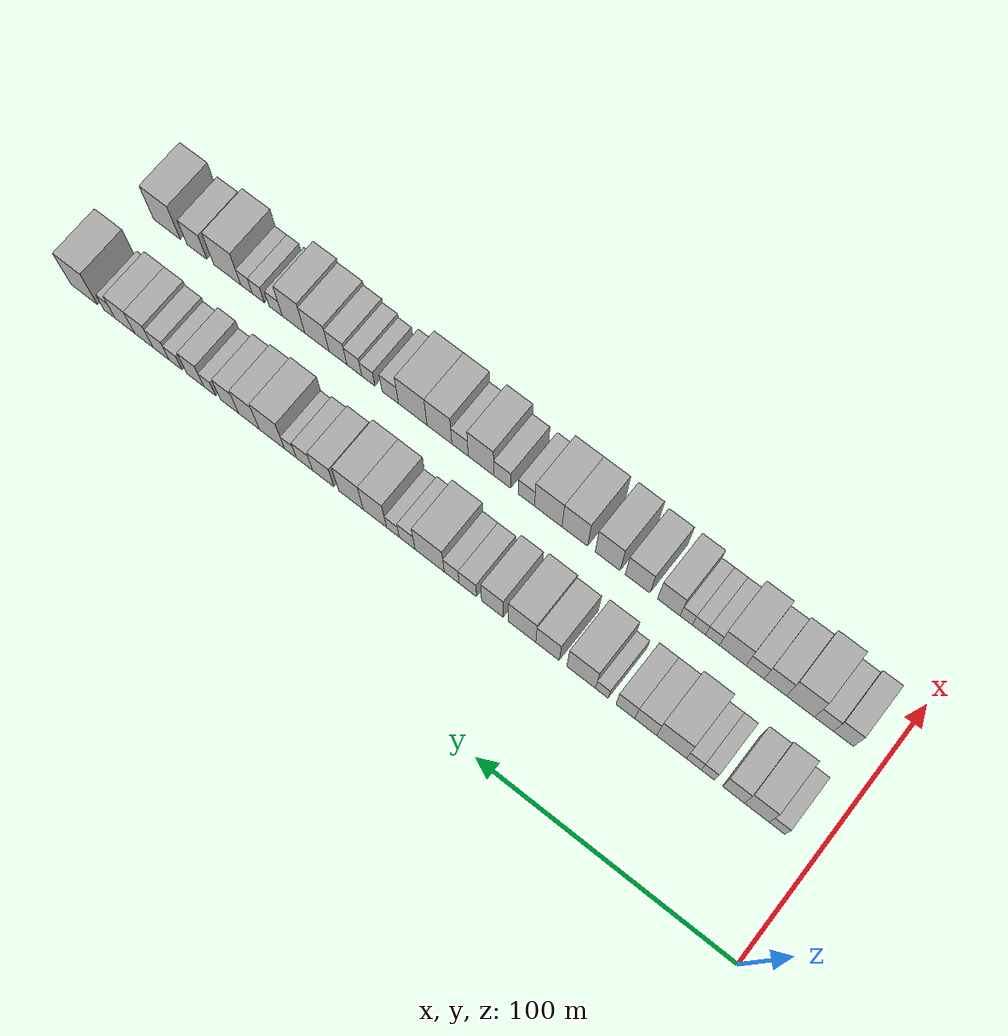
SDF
<sdf version="1.6">
 <world name="default">
  <model name="building_33">
   <static>1</static>
   <pose>50.0000 14.3444 0 0.000000 0.000000 0.000000</pose>
   <link name="link">
    <pose>0 0 6.00 0 0 0</pose>
    <collision name="collision"><geometry><box><size>20.0000 5.9111 12.0000</size></box></geometry></collision>
    <visual name="visual">
     <cast_shadows>0</cast_shadows>
     <geometry><box><size>20.0000 5.9111 12.0000</size></box></geometry>
     <material>
      <script>
       <uri>model://HANNAS_wall/materials/scripts</uri>
       <uri>model://HANNAS_wall/materials/textures</uri>
       <name>vrc/HANNAS_wall</name>
      </script>
     </material>
    </visual>
   </link>
  </model>
  <model name="building_34">
   <static>1</static>
   <pose>50.0000 21.9652 0 0.000000 0.000000 0.000000</pose>
   <link name="link">
    <pose>0 0 10.50 0 0 0</pose>
    <collision name="collision"><geometry><box><size>20.0000 9.3304 21.0000</size></box></geometry></collision>
    <visual name="visual">
     <cast_shadows>0</cast_shadows>
     <geometry><box><size>20.0000 9.3304 21.0000</size></box></geometry>
     <material>
      <script>
       <uri>model://HANNAS_wall/materials/scripts</uri>
       <uri>model://HANNAS_wall/materials/textures</uri>
       <name>vrc/HANNAS_wall</name>
      </script>
     </material>
    </visual>
   </link>
  </model>
  <model name="building_35">
   <static>1</static>
   <pose>50.0000 30.7936 0 0.000000 0.000000 0.000000</pose>
   <link name="link">
    <pose>0 0 9.00 0 0 0</pose>
    <collision name="collision"><geometry><box><size>20.0000 8.3263 18.0000</size></box></geometry></collision>
    <visual name="visual">
     <cast_shadows>0</cast_shadows>
     <geometry><box><size>20.0000 8.3263 18.0000</size></box></geometry>
     <material>
      <script>
       <uri>model://HANNAS_wall/materials/scripts</uri>
       <uri>model://HANNAS_wall/materials/textures</uri>
       <name>vrc/HANNAS_wall</name>
      </script>
     </material>
    </visual>
   </link>
  </model>
  <model name="building_36">
   <static>1</static>
   <pose>50.0000 40.5594 0 0.000000 0.000000 0.000000</pose>
   <link name="link">
    <pose>0 0 6.00 0 0 0</pose>
    <collision name="collision"><geometry><box><size>20.0000 5.2052 12.0000</size></box></geometry></collision>
    <visual name="visual">
     <cast_shadows>0</cast_shadows>
     <geometry><box><size>20.0000 5.2052 12.0000</size></box></geometry>
     <material>
      <script>
       <uri>model://HANNAS_wall/materials/scripts</uri>
       <uri>model://HANNAS_wall/materials/textures</uri>
       <name>vrc/HANNAS_wall</name>
      </script>
     </material>
    </visual>
   </link>
  </model>
  <model name="building_37">
   <static>1</static>
   <pose>50.0000 45.9524 0 0.000000 0.000000 0.000000</pose>
   <link name="link">
    <pose>0 0 6.00 0 0 0</pose>
    <collision name="collision"><geometry><box><size>20.0000 5.5808 12.0000</size></box></geometry></collision>
    <visual name="visual">
     <cast_shadows>0</cast_shadows>
     <geometry><box><size>20.0000 5.5808 12.0000</size></box></geometry>
     <material>
      <script>
       <uri>model://HANNAS_wall/materials/scripts</uri>
       <uri>model://HANNAS_wall/materials/textures</uri>
       <name>vrc/HANNAS_wall</name>
      </script>
     </material>
    </visual>
   </link>
  </model>
  <model name="building_38">
   <static>1</static>
   <pose>50.0000 54.4894 0 0.000000 0.000000 0.000000</pose>
   <link name="link">
    <pose>0 0 12.00 0 0 0</pose>
    <collision name="collision"><geometry><box><size>20.0000 11.4933 24.0000</size></box></geometry></collision>
    <visual name="visual">
     <cast_shadows>0</cast_shadows>
     <geometry><box><size>20.0000 11.4933 24.0000</size></box></geometry>
     <material>
      <script>
       <uri>model://HANNAS_wall/materials/scripts</uri>
       <uri>model://HANNAS_wall/materials/textures</uri>
       <name>vrc/HANNAS_wall</name>
      </script>
     </material>
    </visual>
   </link>
  </model>
  <model name="building_39">
   <static>1</static>
   <pose>50.0000 64.4755 0 0.000000 0.000000 0.000000</pose>
   <link name="link">
    <pose>0 0 9.00 0 0 0</pose>
    <collision name="collision"><geometry><box><size>20.0000 8.4789 18.0000</size></box></geometry></collision>
    <visual name="visual">
     <cast_shadows>0</cast_shadows>
     <geometry><box><size>20.0000 8.4789 18.0000</size></box></geometry>
     <material>
      <script>
       <uri>model://HANNAS_wall/materials/scripts</uri>
       <uri>model://HANNAS_wall/materials/textures</uri>
       <name>vrc/HANNAS_wall</name>
      </script>
     </material>
    </visual>
   </link>
  </model>
  <model name="building_40">
   <static>1</static>
   <pose>50.0000 72.4125 0 0.000000 0.000000 0.000000</pose>
   <link name="link">
    <pose>0 0 9.00 0 0 0</pose>
    <collision name="collision"><geometry><box><size>20.0000 7.3950 18.0000</size></box></geometry></collision>
    <visual name="visual">
     <cast_shadows>0</cast_shadows>
     <geometry><box><size>20.0000 7.3950 18.0000</size></box></geometry>
     <material>
      <script>
       <uri>model://HANNAS_wall/materials/scripts</uri>
       <uri>model://HANNAS_wall/materials/textures</uri>
       <name>vrc/HANNAS_wall</name>
      </script>
     </material>
    </visual>
   </link>
  </model>
  <model name="building_41">
   <static>1</static>
   <pose>50.0000 81.6175 0 0.000000 0.000000 0.000000</pose>
   <link name="link">
    <pose>0 0 6.00 0 0 0</pose>
    <collision name="collision"><geometry><box><size>20.0000 5.0149 12.0000</size></box></geometry></collision>
    <visual name="visual">
     <cast_shadows>0</cast_shadows>
     <geometry><box><size>20.0000 5.0149 12.0000</size></box></geometry>
     <material>
      <script>
       <uri>model://HANNAS_wall/materials/scripts</uri>
       <uri>model://HANNAS_wall/materials/textures</uri>
       <name>vrc/HANNAS_wall</name>
      </script>
     </material>
    </visual>
   </link>
  </model>
  <model name="building_42">
   <static>1</static>
   <pose>50.0000 89.7764 0 0.000000 0.000000 0.000000</pose>
   <link name="link">
    <pose>0 0 12.00 0 0 0</pose>
    <collision name="collision"><geometry><box><size>20.0000 11.3030 24.0000</size></box></geometry></collision>
    <visual name="visual">
     <cast_shadows>0</cast_shadows>
     <geometry><box><size>20.0000 11.3030 24.0000</size></box></geometry>
     <material>
      <script>
       <uri>model://HANNAS_wall/materials/scripts</uri>
       <uri>model://HANNAS_wall/materials/textures</uri>
       <name>vrc/HANNAS_wall</name>
      </script>
     </material>
    </visual>
   </link>
  </model>
  <model name="building_43">
   <static>1</static>
   <pose>50.0000 103.0872 0 0.000000 0.000000 0.000000</pose>
   <link name="link">
    <pose>0 0 10.50 0 0 0</pose>
    <collision name="collision"><geometry><box><size>20.0000 9.3187 21.0000</size></box></geometry></collision>
    <visual name="visual">
     <cast_shadows>0</cast_shadows>
     <geometry><box><size>20.0000 9.3187 21.0000</size></box></geometry>
     <material>
      <script>
       <uri>model://HANNAS_wall/materials/scripts</uri>
       <uri>model://HANNAS_wall/materials/textures</uri>
       <name>vrc/HANNAS_wall</name>
      </script>
     </material>
    </visual>
   </link>
  </model>
  <model name="building_44">
   <static>1</static>
   <pose>50.0000 113.2715 0 0.000000 0.000000 0.000000</pose>
   <link name="link">
    <pose>0 0 12.00 0 0 0</pose>
    <collision name="collision"><geometry><box><size>20.0000 11.0499 24.0000</size></box></geometry></collision>
    <visual name="visual">
     <cast_shadows>0</cast_shadows>
     <geometry><box><size>20.0000 11.0499 24.0000</size></box></geometry>
     <material>
      <script>
       <uri>model://HANNAS_wall/materials/scripts</uri>
       <uri>model://HANNAS_wall/materials/textures</uri>
       <name>vrc/HANNAS_wall</name>
      </script>
     </material>
    </visual>
   </link>
  </model>
  <model name="building_45">
   <static>1</static>
   <pose>50.0000 125.1770 0 0.000000 0.000000 0.000000</pose>
   <link name="link">
    <pose>0 0 10.50 0 0 0</pose>
    <collision name="collision"><geometry><box><size>20.0000 8.7611 21.0000</size></box></geometry></collision>
    <visual name="visual">
     <cast_shadows>0</cast_shadows>
     <geometry><box><size>20.0000 8.7611 21.0000</size></box></geometry>
     <material>
      <script>
       <uri>model://HANNAS_wall/materials/scripts</uri>
       <uri>model://HANNAS_wall/materials/textures</uri>
       <name>vrc/HANNAS_wall</name>
      </script>
     </material>
    </visual>
   </link>
  </model>
  <model name="building_46">
   <static>1</static>
   <pose>50.0000 135.1034 0 0.000000 0.000000 0.000000</pose>
   <link name="link">
    <pose>0 0 7.50 0 0 0</pose>
    <collision name="collision"><geometry><box><size>20.0000 7.0916 15.0000</size></box></geometry></collision>
    <visual name="visual">
     <cast_shadows>0</cast_shadows>
     <geometry><box><size>20.0000 7.0916 15.0000</size></box></geometry>
     <material>
      <script>
       <uri>model://HANNAS_wall/materials/scripts</uri>
       <uri>model://HANNAS_wall/materials/textures</uri>
       <name>vrc/HANNAS_wall</name>
      </script>
     </material>
    </visual>
   </link>
  </model>
  <model name="building_47">
   <static>1</static>
   <pose>50.0000 141.6716 0 0.000000 0.000000 0.000000</pose>
   <link name="link">
    <pose>0 0 7.50 0 0 0</pose>
    <collision name="collision"><geometry><box><size>20.0000 6.0449 15.0000</size></box></geometry></collision>
    <visual name="visual">
     <cast_shadows>0</cast_shadows>
     <geometry><box><size>20.0000 6.0449 15.0000</size></box></geometry>
     <material>
      <script>
       <uri>model://HANNAS_wall/materials/scripts</uri>
       <uri>model://HANNAS_wall/materials/textures</uri>
       <name>vrc/HANNAS_wall</name>
      </script>
     </material>
    </visual>
   </link>
  </model>
  <model name="building_48">
   <static>1</static>
   <pose>50.0000 150.6793 0 0.000000 0.000000 0.000000</pose>
   <link name="link">
    <pose>0 0 12.00 0 0 0</pose>
    <collision name="collision"><geometry><box><size>20.0000 11.9705 24.0000</size></box></geometry></collision>
    <visual name="visual">
     <cast_shadows>0</cast_shadows>
     <geometry><box><size>20.0000 11.9705 24.0000</size></box></geometry>
     <material>
      <script>
       <uri>model://HANNAS_wall/materials/scripts</uri>
       <uri>model://HANNAS_wall/materials/textures</uri>
       <name>vrc/HANNAS_wall</name>
      </script>
     </material>
    </visual>
   </link>
  </model>
  <model name="building_49">
   <static>1</static>
   <pose>50.0000 159.9098 0 0.000000 0.000000 0.000000</pose>
   <link name="link">
    <pose>0 0 7.50 0 0 0</pose>
    <collision name="collision"><geometry><box><size>20.0000 6.4904 15.0000</size></box></geometry></collision>
    <visual name="visual">
     <cast_shadows>0</cast_shadows>
     <geometry><box><size>20.0000 6.4904 15.0000</size></box></geometry>
     <material>
      <script>
       <uri>model://HANNAS_wall/materials/scripts</uri>
       <uri>model://HANNAS_wall/materials/textures</uri>
       <name>vrc/HANNAS_wall</name>
      </script>
     </material>
    </visual>
   </link>
  </model>
  <model name="building_50">
   <static>1</static>
   <pose>50.0000 165.7924 0 0.000000 0.000000 0.000000</pose>
   <link name="link">
    <pose>0 0 6.00 0 0 0</pose>
    <collision name="collision"><geometry><box><size>20.0000 5.2749 12.0000</size></box></geometry></collision>
    <visual name="visual">
     <cast_shadows>0</cast_shadows>
     <geometry><box><size>20.0000 5.2749 12.0000</size></box></geometry>
     <material>
      <script>
       <uri>model://HANNAS_wall/materials/scripts</uri>
       <uri>model://HANNAS_wall/materials/textures</uri>
       <name>vrc/HANNAS_wall</name>
      </script>
     </material>
    </visual>
   </link>
  </model>
  <model name="building_51">
   <static>1</static>
   <pose>50.0000 173.2698 0 0.000000 0.000000 0.000000</pose>
   <link name="link">
    <pose>0 0 12.00 0 0 0</pose>
    <collision name="collision"><geometry><box><size>20.0000 9.6800 24.0000</size></box></geometry></collision>
    <visual name="visual">
     <cast_shadows>0</cast_shadows>
     <geometry><box><size>20.0000 9.6800 24.0000</size></box></geometry>
     <material>
      <script>
       <uri>model://HANNAS_wall/materials/scripts</uri>
       <uri>model://HANNAS_wall/materials/textures</uri>
       <name>vrc/HANNAS_wall</name>
      </script>
     </material>
    </visual>
   </link>
  </model>
  <model name="building_52">
   <static>1</static>
   <pose>50.0000 183.2570 0 0.000000 0.000000 0.000000</pose>
   <link name="link">
    <pose>0 0 12.00 0 0 0</pose>
    <collision name="collision"><geometry><box><size>20.0000 10.2944 24.0000</size></box></geometry></collision>
    <visual name="visual">
     <cast_shadows>0</cast_shadows>
     <geometry><box><size>20.0000 10.2944 24.0000</size></box></geometry>
     <material>
      <script>
       <uri>model://HANNAS_wall/materials/scripts</uri>
       <uri>model://HANNAS_wall/materials/textures</uri>
       <name>vrc/HANNAS_wall</name>
      </script>
     </material>
    </visual>
   </link>
  </model>
  <model name="building_53">
   <static>1</static>
   <pose>50.0000 194.8930 0 0.000000 0.000000 0.000000</pose>
   <link name="link">
    <pose>0 0 9.00 0 0 0</pose>
    <collision name="collision"><geometry><box><size>20.0000 8.9776 18.0000</size></box></geometry></collision>
    <visual name="visual">
     <cast_shadows>0</cast_shadows>
     <geometry><box><size>20.0000 8.9776 18.0000</size></box></geometry>
     <material>
      <script>
       <uri>model://HANNAS_wall/materials/scripts</uri>
       <uri>model://HANNAS_wall/materials/textures</uri>
       <name>vrc/HANNAS_wall</name>
      </script>
     </material>
    </visual>
   </link>
  </model>
  <model name="building_54">
   <static>1</static>
   <pose>50.0000 202.7825 0 0.000000 0.000000 0.000000</pose>
   <link name="link">
    <pose>0 0 7.50 0 0 0</pose>
    <collision name="collision"><geometry><box><size>20.0000 6.8014 15.0000</size></box></geometry></collision>
    <visual name="visual">
     <cast_shadows>0</cast_shadows>
     <geometry><box><size>20.0000 6.8014 15.0000</size></box></geometry>
     <material>
      <script>
       <uri>model://HANNAS_wall/materials/scripts</uri>
       <uri>model://HANNAS_wall/materials/textures</uri>
       <name>vrc/HANNAS_wall</name>
      </script>
     </material>
    </visual>
   </link>
  </model>
  <model name="building_55">
   <static>1</static>
   <pose>50.0000 208.6903 0 0.000000 0.000000 0.000000</pose>
   <link name="link">
    <pose>0 0 6.00 0 0 0</pose>
    <collision name="collision"><geometry><box><size>20.0000 5.0142 12.0000</size></box></geometry></collision>
    <visual name="visual">
     <cast_shadows>0</cast_shadows>
     <geometry><box><size>20.0000 5.0142 12.0000</size></box></geometry>
     <material>
      <script>
       <uri>model://HANNAS_wall/materials/scripts</uri>
       <uri>model://HANNAS_wall/materials/textures</uri>
       <name>vrc/HANNAS_wall</name>
      </script>
     </material>
    </visual>
   </link>
  </model>
  <model name="building_56">
   <static>1</static>
   <pose>50.0000 216.5766 0 0.000000 0.000000 0.000000</pose>
   <link name="link">
    <pose>0 0 12.00 0 0 0</pose>
    <collision name="collision"><geometry><box><size>20.0000 10.7585 24.0000</size></box></geometry></collision>
    <visual name="visual">
     <cast_shadows>0</cast_shadows>
     <geometry><box><size>20.0000 10.7585 24.0000</size></box></geometry>
     <material>
      <script>
       <uri>model://HANNAS_wall/materials/scripts</uri>
       <uri>model://HANNAS_wall/materials/textures</uri>
       <name>vrc/HANNAS_wall</name>
      </script>
     </material>
    </visual>
   </link>
  </model>
  <model name="building_57">
   <static>1</static>
   <pose>50.0000 226.4314 0 0.000000 0.000000 0.000000</pose>
   <link name="link">
    <pose>0 0 10.50 0 0 0</pose>
    <collision name="collision"><geometry><box><size>20.0000 8.9510 21.0000</size></box></geometry></collision>
    <visual name="visual">
     <cast_shadows>0</cast_shadows>
     <geometry><box><size>20.0000 8.9510 21.0000</size></box></geometry>
     <material>
      <script>
       <uri>model://HANNAS_wall/materials/scripts</uri>
       <uri>model://HANNAS_wall/materials/textures</uri>
       <name>vrc/HANNAS_wall</name>
      </script>
     </material>
    </visual>
   </link>
  </model>
  <model name="building_58">
   <static>1</static>
   <pose>50.0000 234.8425 0 0.000000 0.000000 0.000000</pose>
   <link name="link">
    <pose>0 0 9.00 0 0 0</pose>
    <collision name="collision"><geometry><box><size>20.0000 7.8712 18.0000</size></box></geometry></collision>
    <visual name="visual">
     <cast_shadows>0</cast_shadows>
     <geometry><box><size>20.0000 7.8712 18.0000</size></box></geometry>
     <material>
      <script>
       <uri>model://HANNAS_wall/materials/scripts</uri>
       <uri>model://HANNAS_wall/materials/textures</uri>
       <name>vrc/HANNAS_wall</name>
      </script>
     </material>
    </visual>
   </link>
  </model>
  <model name="building_59">
   <static>1</static>
   <pose>50.0000 243.3342 0 0.000000 0.000000 0.000000</pose>
   <link name="link">
    <pose>0 0 6.00 0 0 0</pose>
    <collision name="collision"><geometry><box><size>20.0000 5.1123 12.0000</size></box></geometry></collision>
    <visual name="visual">
     <cast_shadows>0</cast_shadows>
     <geometry><box><size>20.0000 5.1123 12.0000</size></box></geometry>
     <material>
      <script>
       <uri>model://HANNAS_wall/materials/scripts</uri>
       <uri>model://HANNAS_wall/materials/textures</uri>
       <name>vrc/HANNAS_wall</name>
      </script>
     </material>
    </visual>
   </link>
  </model>
  <model name="building_60">
   <static>1</static>
   <pose>50.0000 249.6590 0 0.000000 0.000000 0.000000</pose>
   <link name="link">
    <pose>0 0 9.00 0 0 0</pose>
    <collision name="collision"><geometry><box><size>20.0000 7.5372 18.0000</size></box></geometry></collision>
    <visual name="visual">
     <cast_shadows>0</cast_shadows>
     <geometry><box><size>20.0000 7.5372 18.0000</size></box></geometry>
     <material>
      <script>
       <uri>model://HANNAS_wall/materials/scripts</uri>
       <uri>model://HANNAS_wall/materials/textures</uri>
       <name>vrc/HANNAS_wall</name>
      </script>
     </material>
    </visual>
   </link>
  </model>
  <model name="building_61">
   <static>1</static>
   <pose>50.0000 258.2725 0 0.000000 0.000000 0.000000</pose>
   <link name="link">
    <pose>0 0 6.00 0 0 0</pose>
    <collision name="collision"><geometry><box><size>20.0000 5.6899 12.0000</size></box></geometry></collision>
    <visual name="visual">
     <cast_shadows>0</cast_shadows>
     <geometry><box><size>20.0000 5.6899 12.0000</size></box></geometry>
     <material>
      <script>
       <uri>model://HANNAS_wall/materials/scripts</uri>
       <uri>model://HANNAS_wall/materials/textures</uri>
       <name>vrc/HANNAS_wall</name>
      </script>
     </material>
    </visual>
   </link>
  </model>
  <model name="building_62">
   <static>1</static>
   <pose>50.0000 264.6710 0 0.000000 0.000000 0.000000</pose>
   <link name="link">
    <pose>0 0 7.50 0 0 0</pose>
    <collision name="collision"><geometry><box><size>20.0000 7.1070 15.0000</size></box></geometry></collision>
    <visual name="visual">
     <cast_shadows>0</cast_shadows>
     <geometry><box><size>20.0000 7.1070 15.0000</size></box></geometry>
     <material>
      <script>
       <uri>model://HANNAS_wall/materials/scripts</uri>
       <uri>model://HANNAS_wall/materials/textures</uri>
       <name>vrc/HANNAS_wall</name>
      </script>
     </material>
    </visual>
   </link>
  </model>
  <model name="building_63">
   <static>1</static>
   <pose>50.0000 272.2900 0 0.000000 0.000000 0.000000</pose>
   <link name="link">
    <pose>0 0 9.00 0 0 0</pose>
    <collision name="collision"><geometry><box><size>20.0000 8.1312 18.0000</size></box></geometry></collision>
    <visual name="visual">
     <cast_shadows>0</cast_shadows>
     <geometry><box><size>20.0000 8.1312 18.0000</size></box></geometry>
     <material>
      <script>
       <uri>model://HANNAS_wall/materials/scripts</uri>
       <uri>model://HANNAS_wall/materials/textures</uri>
       <name>vrc/HANNAS_wall</name>
      </script>
     </material>
    </visual>
   </link>
  </model>
  <model name="building_64">
   <static>1</static>
   <pose>50.0000 280.7285 0 0.000000 0.000000 0.000000</pose>
   <link name="link">
    <pose>0 0 9.00 0 0 0</pose>
    <collision name="collision"><geometry><box><size>20.0000 8.7458 18.0000</size></box></geometry></collision>
    <visual name="visual">
     <cast_shadows>0</cast_shadows>
     <geometry><box><size>20.0000 8.7458 18.0000</size></box></geometry>
     <material>
      <script>
       <uri>model://HANNAS_wall/materials/scripts</uri>
       <uri>model://HANNAS_wall/materials/textures</uri>
       <name>vrc/HANNAS_wall</name>
      </script>
     </material>
    </visual>
   </link>
  </model>
  <model name="building_65">
   <static>1</static>
   <pose>50.0000 287.5480 0 0.000000 0.000000 0.000000</pose>
   <link name="link">
    <pose>0 0 6.00 0 0 0</pose>
    <collision name="collision"><geometry><box><size>20.0000 4.8931 12.0000</size></box></geometry></collision>
    <visual name="visual">
     <cast_shadows>0</cast_shadows>
     <geometry><box><size>20.0000 4.8931 12.0000</size></box></geometry>
     <material>
      <script>
       <uri>model://HANNAS_wall/materials/scripts</uri>
       <uri>model://HANNAS_wall/materials/textures</uri>
       <name>vrc/HANNAS_wall</name>
      </script>
     </material>
    </visual>
   </link>
  </model>
  <model name="building_66">
   <static>1</static>
   <pose>50.0000 298.9253 0 0.000000 0.000000 0.000000</pose>
   <link name="link">
    <pose>0 0 12.00 0 0 0</pose>
    <collision name="collision"><geometry><box><size>20.0000 11.8617 24.0000</size></box></geometry></collision>
    <visual name="visual">
     <cast_shadows>0</cast_shadows>
     <geometry><box><size>20.0000 11.8617 24.0000</size></box></geometry>
     <material>
      <script>
       <uri>model://HANNAS_wall/materials/scripts</uri>
       <uri>model://HANNAS_wall/materials/textures</uri>
       <name>vrc/HANNAS_wall</name>
      </script>
     </material>
    </visual>
   </link>
  </model>
  <model name="building_101">
   <static>1</static>
   <pose>85.0000 14.2045 0 0.000000 0.000000 0.000000</pose>
   <link name="link">
    <pose>0 0 9.00 0 0 0</pose>
    <collision name="collision"><geometry><box><size>20.0000 7.5555 18.0000</size></box></geometry></collision>
    <visual name="visual">
     <cast_shadows>0</cast_shadows>
     <geometry><box><size>20.0000 7.5555 18.0000</size></box></geometry>
     <material>
      <script>
       <uri>model://HANNAS_wall/materials/scripts</uri>
       <uri>model://HANNAS_wall/materials/textures</uri>
       <name>vrc/HANNAS_wall</name>
      </script>
     </material>
    </visual>
   </link>
  </model>
  <model name="building_102">
   <static>1</static>
   <pose>85.0000 21.5557 0 0.000000 0.000000 0.000000</pose>
   <link name="link">
    <pose>0 0 7.50 0 0 0</pose>
    <collision name="collision"><geometry><box><size>20.0000 7.1469 15.0000</size></box></geometry></collision>
    <visual name="visual">
     <cast_shadows>0</cast_shadows>
     <geometry><box><size>20.0000 7.1469 15.0000</size></box></geometry>
     <material>
      <script>
       <uri>model://HANNAS_wall/materials/scripts</uri>
       <uri>model://HANNAS_wall/materials/textures</uri>
       <name>vrc/HANNAS_wall</name>
      </script>
     </material>
    </visual>
   </link>
  </model>
  <model name="building_103">
   <static>1</static>
   <pose>85.0000 30.5075 0 0.000000 0.000000 0.000000</pose>
   <link name="link">
    <pose>0 0 12.00 0 0 0</pose>
    <collision name="collision"><geometry><box><size>20.0000 10.7569 24.0000</size></box></geometry></collision>
    <visual name="visual">
     <cast_shadows>0</cast_shadows>
     <geometry><box><size>20.0000 10.7569 24.0000</size></box></geometry>
     <material>
      <script>
       <uri>model://HANNAS_wall/materials/scripts</uri>
       <uri>model://HANNAS_wall/materials/textures</uri>
       <name>vrc/HANNAS_wall</name>
      </script>
     </material>
    </visual>
   </link>
  </model>
  <model name="building_104">
   <static>1</static>
   <pose>85.0000 40.2105 0 0.000000 0.000000 0.000000</pose>
   <link name="link">
    <pose>0 0 9.00 0 0 0</pose>
    <collision name="collision"><geometry><box><size>20.0000 8.6491 18.0000</size></box></geometry></collision>
    <visual name="visual">
     <cast_shadows>0</cast_shadows>
     <geometry><box><size>20.0000 8.6491 18.0000</size></box></geometry>
     <material>
      <script>
       <uri>model://HANNAS_wall/materials/scripts</uri>
       <uri>model://HANNAS_wall/materials/textures</uri>
       <name>vrc/HANNAS_wall</name>
      </script>
     </material>
    </visual>
   </link>
  </model>
  <model name="building_105">
   <static>1</static>
   <pose>85.0000 48.0023 0 0.000000 0.000000 0.000000</pose>
   <link name="link">
    <pose>0 0 7.50 0 0 0</pose>
    <collision name="collision"><geometry><box><size>20.0000 6.9347 15.0000</size></box></geometry></collision>
    <visual name="visual">
     <cast_shadows>0</cast_shadows>
     <geometry><box><size>20.0000 6.9347 15.0000</size></box></geometry>
     <material>
      <script>
       <uri>model://HANNAS_wall/materials/scripts</uri>
       <uri>model://HANNAS_wall/materials/textures</uri>
       <name>vrc/HANNAS_wall</name>
      </script>
     </material>
    </visual>
   </link>
  </model>
  <model name="building_106">
   <static>1</static>
   <pose>85.0000 56.6477 0 0.000000 0.000000 0.000000</pose>
   <link name="link">
    <pose>0 0 10.50 0 0 0</pose>
    <collision name="collision"><geometry><box><size>20.0000 10.3561 21.0000</size></box></geometry></collision>
    <visual name="visual">
     <cast_shadows>0</cast_shadows>
     <geometry><box><size>20.0000 10.3561 21.0000</size></box></geometry>
     <material>
      <script>
       <uri>model://HANNAS_wall/materials/scripts</uri>
       <uri>model://HANNAS_wall/materials/textures</uri>
       <name>vrc/HANNAS_wall</name>
      </script>
     </material>
    </visual>
   </link>
  </model>
  <model name="building_107">
   <static>1</static>
   <pose>85.0000 64.5326 0 0.000000 0.000000 0.000000</pose>
   <link name="link">
    <pose>0 0 6.00 0 0 0</pose>
    <collision name="collision"><geometry><box><size>20.0000 5.4136 12.0000</size></box></geometry></collision>
    <visual name="visual">
     <cast_shadows>0</cast_shadows>
     <geometry><box><size>20.0000 5.4136 12.0000</size></box></geometry>
     <material>
      <script>
       <uri>model://HANNAS_wall/materials/scripts</uri>
       <uri>model://HANNAS_wall/materials/textures</uri>
       <name>vrc/HANNAS_wall</name>
      </script>
     </material>
    </visual>
   </link>
  </model>
  <model name="building_108">
   <static>1</static>
   <pose>85.0000 69.8304 0 0.000000 0.000000 0.000000</pose>
   <link name="link">
    <pose>0 0 6.00 0 0 0</pose>
    <collision name="collision"><geometry><box><size>20.0000 5.1820 12.0000</size></box></geometry></collision>
    <visual name="visual">
     <cast_shadows>0</cast_shadows>
     <geometry><box><size>20.0000 5.1820 12.0000</size></box></geometry>
     <material>
      <script>
       <uri>model://HANNAS_wall/materials/scripts</uri>
       <uri>model://HANNAS_wall/materials/textures</uri>
       <name>vrc/HANNAS_wall</name>
      </script>
     </material>
    </visual>
   </link>
  </model>
  <model name="building_109">
   <static>1</static>
   <pose>85.0000 74.8318 0 0.000000 0.000000 0.000000</pose>
   <link name="link">
    <pose>0 0 6.00 0 0 0</pose>
    <collision name="collision"><geometry><box><size>20.0000 4.8208 12.0000</size></box></geometry></collision>
    <visual name="visual">
     <cast_shadows>0</cast_shadows>
     <geometry><box><size>20.0000 4.8208 12.0000</size></box></geometry>
     <material>
      <script>
       <uri>model://HANNAS_wall/materials/scripts</uri>
       <uri>model://HANNAS_wall/materials/textures</uri>
       <name>vrc/HANNAS_wall</name>
      </script>
     </material>
    </visual>
   </link>
  </model>
  <model name="building_110">
   <static>1</static>
   <pose>85.0000 81.7082 0 0.000000 0.000000 0.000000</pose>
   <link name="link">
    <pose>0 0 10.50 0 0 0</pose>
    <collision name="collision"><geometry><box><size>20.0000 8.9322 21.0000</size></box></geometry></collision>
    <visual name="visual">
     <cast_shadows>0</cast_shadows>
     <geometry><box><size>20.0000 8.9322 21.0000</size></box></geometry>
     <material>
      <script>
       <uri>model://HANNAS_wall/materials/scripts</uri>
       <uri>model://HANNAS_wall/materials/textures</uri>
       <name>vrc/HANNAS_wall</name>
      </script>
     </material>
    </visual>
   </link>
  </model>
  <model name="building_111">
   <static>1</static>
   <pose>85.0000 94.0865 0 0.000000 0.000000 0.000000</pose>
   <link name="link">
    <pose>0 0 10.50 0 0 0</pose>
    <collision name="collision"><geometry><box><size>20.0000 9.8243 21.0000</size></box></geometry></collision>
    <visual name="visual">
     <cast_shadows>0</cast_shadows>
     <geometry><box><size>20.0000 9.8243 21.0000</size></box></geometry>
     <material>
      <script>
       <uri>model://HANNAS_wall/materials/scripts</uri>
       <uri>model://HANNAS_wall/materials/textures</uri>
       <name>vrc/HANNAS_wall</name>
      </script>
     </material>
    </visual>
   </link>
  </model>
  <model name="building_112">
   <static>1</static>
   <pose>85.0000 106.0267 0 0.000000 0.000000 0.000000</pose>
   <link name="link">
    <pose>0 0 12.00 0 0 0</pose>
    <collision name="collision"><geometry><box><size>20.0000 10.0562 24.0000</size></box></geometry></collision>
    <visual name="visual">
     <cast_shadows>0</cast_shadows>
     <geometry><box><size>20.0000 10.0562 24.0000</size></box></geometry>
     <material>
      <script>
       <uri>model://HANNAS_wall/materials/scripts</uri>
       <uri>model://HANNAS_wall/materials/textures</uri>
       <name>vrc/HANNAS_wall</name>
      </script>
     </material>
    </visual>
   </link>
  </model>
  <model name="building_113">
   <static>1</static>
   <pose>85.0000 119.2377 0 0.000000 0.000000 0.000000</pose>
   <link name="link">
    <pose>0 0 12.00 0 0 0</pose>
    <collision name="collision"><geometry><box><size>20.0000 10.3658 24.0000</size></box></geometry></collision>
    <visual name="visual">
     <cast_shadows>0</cast_shadows>
     <geometry><box><size>20.0000 10.3658 24.0000</size></box></geometry>
     <material>
      <script>
       <uri>model://HANNAS_wall/materials/scripts</uri>
       <uri>model://HANNAS_wall/materials/textures</uri>
       <name>vrc/HANNAS_wall</name>
      </script>
     </material>
    </visual>
   </link>
  </model>
  <model name="building_114">
   <static>1</static>
   <pose>85.0000 130.0193 0 0.000000 0.000000 0.000000</pose>
   <link name="link">
    <pose>0 0 12.00 0 0 0</pose>
    <collision name="collision"><geometry><box><size>20.0000 11.1973 24.0000</size></box></geometry></collision>
    <visual name="visual">
     <cast_shadows>0</cast_shadows>
     <geometry><box><size>20.0000 11.1973 24.0000</size></box></geometry>
     <material>
      <script>
       <uri>model://HANNAS_wall/materials/scripts</uri>
       <uri>model://HANNAS_wall/materials/textures</uri>
       <name>vrc/HANNAS_wall</name>
      </script>
     </material>
    </visual>
   </link>
  </model>
  <model name="building_115">
   <static>1</static>
   <pose>85.0000 138.9833 0 0.000000 0.000000 0.000000</pose>
   <link name="link">
    <pose>0 0 7.50 0 0 0</pose>
    <collision name="collision"><geometry><box><size>20.0000 6.7307 15.0000</size></box></geometry></collision>
    <visual name="visual">
     <cast_shadows>0</cast_shadows>
     <geometry><box><size>20.0000 6.7307 15.0000</size></box></geometry>
     <material>
      <script>
       <uri>model://HANNAS_wall/materials/scripts</uri>
       <uri>model://HANNAS_wall/materials/textures</uri>
       <name>vrc/HANNAS_wall</name>
      </script>
     </material>
    </visual>
   </link>
  </model>
  <model name="building_116">
   <static>1</static>
   <pose>85.0000 148.8593 0 0.000000 0.000000 0.000000</pose>
   <link name="link">
    <pose>0 0 7.50 0 0 0</pose>
    <collision name="collision"><geometry><box><size>20.0000 7.0213 15.0000</size></box></geometry></collision>
    <visual name="visual">
     <cast_shadows>0</cast_shadows>
     <geometry><box><size>20.0000 7.0213 15.0000</size></box></geometry>
     <material>
      <script>
       <uri>model://HANNAS_wall/materials/scripts</uri>
       <uri>model://HANNAS_wall/materials/textures</uri>
       <name>vrc/HANNAS_wall</name>
      </script>
     </material>
    </visual>
   </link>
  </model>
  <model name="building_117">
   <static>1</static>
   <pose>85.0000 157.6160 0 0.000000 0.000000 0.000000</pose>
   <link name="link">
    <pose>0 0 12.00 0 0 0</pose>
    <collision name="collision"><geometry><box><size>20.0000 10.4922 24.0000</size></box></geometry></collision>
    <visual name="visual">
     <cast_shadows>0</cast_shadows>
     <geometry><box><size>20.0000 10.4922 24.0000</size></box></geometry>
     <material>
      <script>
       <uri>model://HANNAS_wall/materials/scripts</uri>
       <uri>model://HANNAS_wall/materials/textures</uri>
       <name>vrc/HANNAS_wall</name>
      </script>
     </material>
    </visual>
   </link>
  </model>
  <model name="building_118">
   <static>1</static>
   <pose>85.0000 166.2771 0 0.000000 0.000000 0.000000</pose>
   <link name="link">
    <pose>0 0 7.50 0 0 0</pose>
    <collision name="collision"><geometry><box><size>20.0000 6.8299 15.0000</size></box></geometry></collision>
    <visual name="visual">
     <cast_shadows>0</cast_shadows>
     <geometry><box><size>20.0000 6.8299 15.0000</size></box></geometry>
     <material>
      <script>
       <uri>model://HANNAS_wall/materials/scripts</uri>
       <uri>model://HANNAS_wall/materials/textures</uri>
       <name>vrc/HANNAS_wall</name>
      </script>
     </material>
    </visual>
   </link>
  </model>
  <model name="building_119">
   <static>1</static>
   <pose>85.0000 174.8830 0 0.000000 0.000000 0.000000</pose>
   <link name="link">
    <pose>0 0 12.00 0 0 0</pose>
    <collision name="collision"><geometry><box><size>20.0000 10.3820 24.0000</size></box></geometry></collision>
    <visual name="visual">
     <cast_shadows>0</cast_shadows>
     <geometry><box><size>20.0000 10.3820 24.0000</size></box></geometry>
     <material>
      <script>
       <uri>model://HANNAS_wall/materials/scripts</uri>
       <uri>model://HANNAS_wall/materials/textures</uri>
       <name>vrc/HANNAS_wall</name>
      </script>
     </material>
    </visual>
   </link>
  </model>
  <model name="building_120">
   <static>1</static>
   <pose>85.0000 186.0519 0 0.000000 0.000000 0.000000</pose>
   <link name="link">
    <pose>0 0 12.00 0 0 0</pose>
    <collision name="collision"><geometry><box><size>20.0000 11.9559 24.0000</size></box></geometry></collision>
    <visual name="visual">
     <cast_shadows>0</cast_shadows>
     <geometry><box><size>20.0000 11.9559 24.0000</size></box></geometry>
     <material>
      <script>
       <uri>model://HANNAS_wall/materials/scripts</uri>
       <uri>model://HANNAS_wall/materials/textures</uri>
       <name>vrc/HANNAS_wall</name>
      </script>
     </material>
    </visual>
   </link>
  </model>
  <model name="building_121">
   <static>1</static>
   <pose>85.0000 195.5482 0 0.000000 0.000000 0.000000</pose>
   <link name="link">
    <pose>0 0 7.50 0 0 0</pose>
    <collision name="collision"><geometry><box><size>20.0000 7.0367 15.0000</size></box></geometry></collision>
    <visual name="visual">
     <cast_shadows>0</cast_shadows>
     <geometry><box><size>20.0000 7.0367 15.0000</size></box></geometry>
     <material>
      <script>
       <uri>model://HANNAS_wall/materials/scripts</uri>
       <uri>model://HANNAS_wall/materials/textures</uri>
       <name>vrc/HANNAS_wall</name>
      </script>
     </material>
    </visual>
   </link>
  </model>
  <model name="building_122">
   <static>1</static>
   <pose>85.0000 204.8581 0 0.000000 0.000000 0.000000</pose>
   <link name="link">
    <pose>0 0 6.00 0 0 0</pose>
    <collision name="collision"><geometry><box><size>20.0000 5.5830 12.0000</size></box></geometry></collision>
    <visual name="visual">
     <cast_shadows>0</cast_shadows>
     <geometry><box><size>20.0000 5.5830 12.0000</size></box></geometry>
     <material>
      <script>
       <uri>model://HANNAS_wall/materials/scripts</uri>
       <uri>model://HANNAS_wall/materials/textures</uri>
       <name>vrc/HANNAS_wall</name>
      </script>
     </material>
    </visual>
   </link>
  </model>
  <model name="building_123">
   <static>1</static>
   <pose>85.0000 210.8337 0 0.000000 0.000000 0.000000</pose>
   <link name="link">
    <pose>0 0 7.50 0 0 0</pose>
    <collision name="collision"><geometry><box><size>20.0000 6.3683 15.0000</size></box></geometry></collision>
    <visual name="visual">
     <cast_shadows>0</cast_shadows>
     <geometry><box><size>20.0000 6.3683 15.0000</size></box></geometry>
     <material>
      <script>
       <uri>model://HANNAS_wall/materials/scripts</uri>
       <uri>model://HANNAS_wall/materials/textures</uri>
       <name>vrc/HANNAS_wall</name>
      </script>
     </material>
    </visual>
   </link>
  </model>
  <model name="building_124">
   <static>1</static>
   <pose>85.0000 217.8552 0 0.000000 0.000000 0.000000</pose>
   <link name="link">
    <pose>0 0 9.00 0 0 0</pose>
    <collision name="collision"><geometry><box><size>20.0000 7.6747 18.0000</size></box></geometry></collision>
    <visual name="visual">
     <cast_shadows>0</cast_shadows>
     <geometry><box><size>20.0000 7.6747 18.0000</size></box></geometry>
     <material>
      <script>
       <uri>model://HANNAS_wall/materials/scripts</uri>
       <uri>model://HANNAS_wall/materials/textures</uri>
       <name>vrc/HANNAS_wall</name>
      </script>
     </material>
    </visual>
   </link>
  </model>
  <model name="building_125">
   <static>1</static>
   <pose>85.0000 226.9395 0 0.000000 0.000000 0.000000</pose>
   <link name="link">
    <pose>0 0 10.50 0 0 0</pose>
    <collision name="collision"><geometry><box><size>20.0000 10.4938 21.0000</size></box></geometry></collision>
    <visual name="visual">
     <cast_shadows>0</cast_shadows>
     <geometry><box><size>20.0000 10.4938 21.0000</size></box></geometry>
     <material>
      <script>
       <uri>model://HANNAS_wall/materials/scripts</uri>
       <uri>model://HANNAS_wall/materials/textures</uri>
       <name>vrc/HANNAS_wall</name>
      </script>
     </material>
    </visual>
   </link>
  </model>
  <model name="building_126">
   <static>1</static>
   <pose>85.0000 237.0971 0 0.000000 0.000000 0.000000</pose>
   <link name="link">
    <pose>0 0 12.00 0 0 0</pose>
    <collision name="collision"><geometry><box><size>20.0000 9.8214 24.0000</size></box></geometry></collision>
    <visual name="visual">
     <cast_shadows>0</cast_shadows>
     <geometry><box><size>20.0000 9.8214 24.0000</size></box></geometry>
     <material>
      <script>
       <uri>model://HANNAS_wall/materials/scripts</uri>
       <uri>model://HANNAS_wall/materials/textures</uri>
       <name>vrc/HANNAS_wall</name>
      </script>
     </material>
    </visual>
   </link>
  </model>
  <model name="building_127">
   <static>1</static>
   <pose>85.0000 244.8953 0 0.000000 0.000000 0.000000</pose>
   <link name="link">
    <pose>0 0 6.00 0 0 0</pose>
    <collision name="collision"><geometry><box><size>20.0000 5.7750 12.0000</size></box></geometry></collision>
    <visual name="visual">
     <cast_shadows>0</cast_shadows>
     <geometry><box><size>20.0000 5.7750 12.0000</size></box></geometry>
     <material>
      <script>
       <uri>model://HANNAS_wall/materials/scripts</uri>
       <uri>model://HANNAS_wall/materials/textures</uri>
       <name>vrc/HANNAS_wall</name>
      </script>
     </material>
    </visual>
   </link>
  </model>
  <model name="building_128">
   <static>1</static>
   <pose>85.0000 252.4363 0 0.000000 0.000000 0.000000</pose>
   <link name="link">
    <pose>0 0 6.00 0 0 0</pose>
    <collision name="collision"><geometry><box><size>20.0000 5.3071 12.0000</size></box></geometry></collision>
    <visual name="visual">
     <cast_shadows>0</cast_shadows>
     <geometry><box><size>20.0000 5.3071 12.0000</size></box></geometry>
     <material>
      <script>
       <uri>model://HANNAS_wall/materials/scripts</uri>
       <uri>model://HANNAS_wall/materials/textures</uri>
       <name>vrc/HANNAS_wall</name>
      </script>
     </material>
    </visual>
   </link>
  </model>
  <model name="building_129">
   <static>1</static>
   <pose>85.0000 257.6252 0 0.000000 0.000000 0.000000</pose>
   <link name="link">
    <pose>0 0 6.00 0 0 0</pose>
    <collision name="collision"><geometry><box><size>20.0000 5.0706 12.0000</size></box></geometry></collision>
    <visual name="visual">
     <cast_shadows>0</cast_shadows>
     <geometry><box><size>20.0000 5.0706 12.0000</size></box></geometry>
     <material>
      <script>
       <uri>model://HANNAS_wall/materials/scripts</uri>
       <uri>model://HANNAS_wall/materials/textures</uri>
       <name>vrc/HANNAS_wall</name>
      </script>
     </material>
    </visual>
   </link>
  </model>
  <model name="building_130">
   <static>1</static>
   <pose>85.0000 266.1334 0 0.000000 0.000000 0.000000</pose>
   <link name="link">
    <pose>0 0 12.00 0 0 0</pose>
    <collision name="collision"><geometry><box><size>20.0000 11.9459 24.0000</size></box></geometry></collision>
    <visual name="visual">
     <cast_shadows>0</cast_shadows>
     <geometry><box><size>20.0000 11.9459 24.0000</size></box></geometry>
     <material>
      <script>
       <uri>model://HANNAS_wall/materials/scripts</uri>
       <uri>model://HANNAS_wall/materials/textures</uri>
       <name>vrc/HANNAS_wall</name>
      </script>
     </material>
    </visual>
   </link>
  </model>
  <model name="building_131">
   <static>1</static>
   <pose>85.0000 279.5695 0 0.000000 0.000000 0.000000</pose>
   <link name="link">
    <pose>0 0 9.00 0 0 0</pose>
    <collision name="collision"><geometry><box><size>20.0000 8.9263 18.0000</size></box></geometry></collision>
    <visual name="visual">
     <cast_shadows>0</cast_shadows>
     <geometry><box><size>20.0000 8.9263 18.0000</size></box></geometry>
     <material>
      <script>
       <uri>model://HANNAS_wall/materials/scripts</uri>
       <uri>model://HANNAS_wall/materials/textures</uri>
       <name>vrc/HANNAS_wall</name>
      </script>
     </material>
    </visual>
   </link>
  </model>
  <model name="building_132">
   <static>1</static>
   <pose>85.0000 293.0216 0 0.000000 0.000000 0.000000</pose>
   <link name="link">
    <pose>0 0 12.00 0 0 0</pose>
    <collision name="collision"><geometry><box><size>20.0000 11.9780 24.0000</size></box></geometry></collision>
    <visual name="visual">
     <cast_shadows>0</cast_shadows>
     <geometry><box><size>20.0000 11.9780 24.0000</size></box></geometry>
     <material>
      <script>
       <uri>model://HANNAS_wall/materials/scripts</uri>
       <uri>model://HANNAS_wall/materials/textures</uri>
       <name>vrc/HANNAS_wall</name>
      </script>
     </material>
    </visual>
   </link>
  </model>
 </world>
</sdf>
